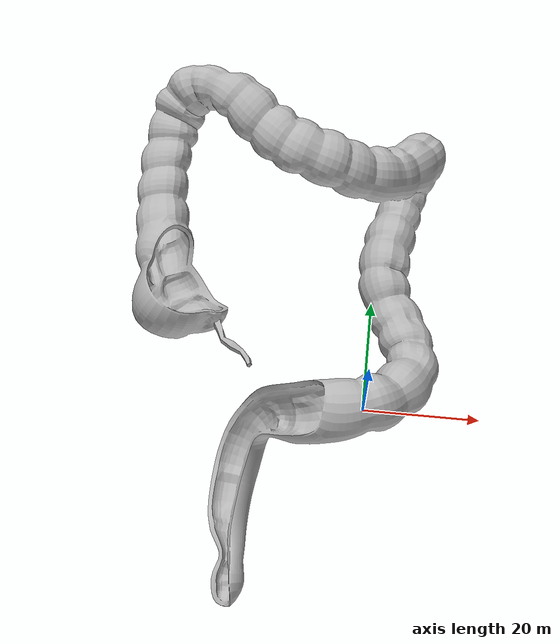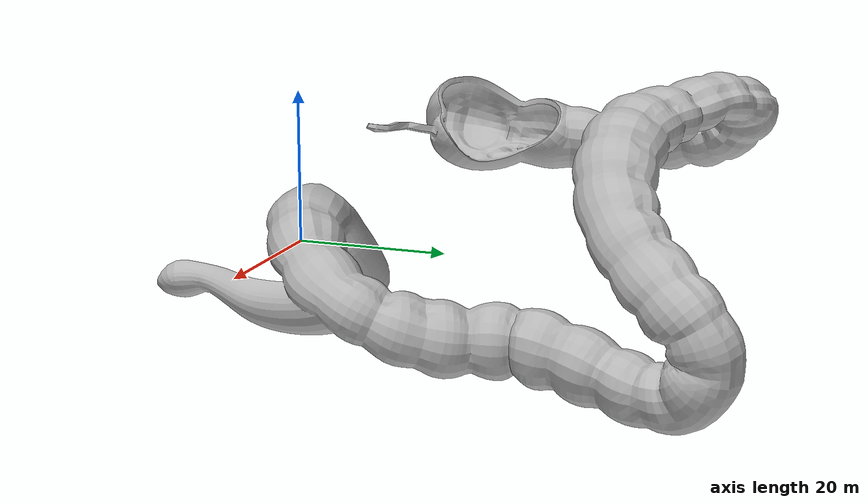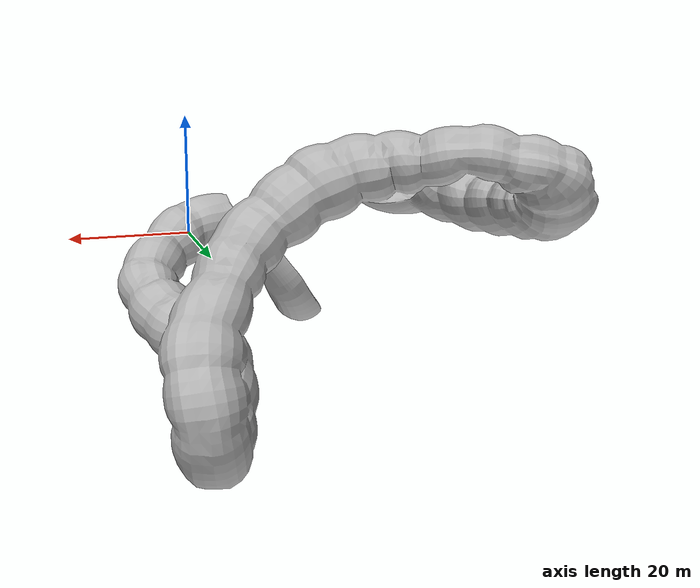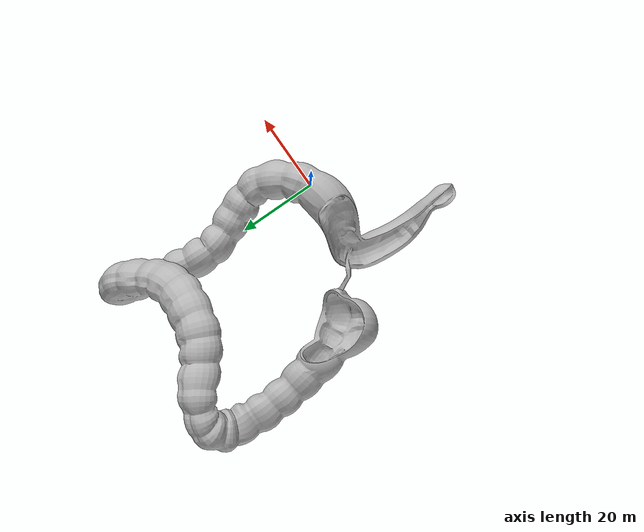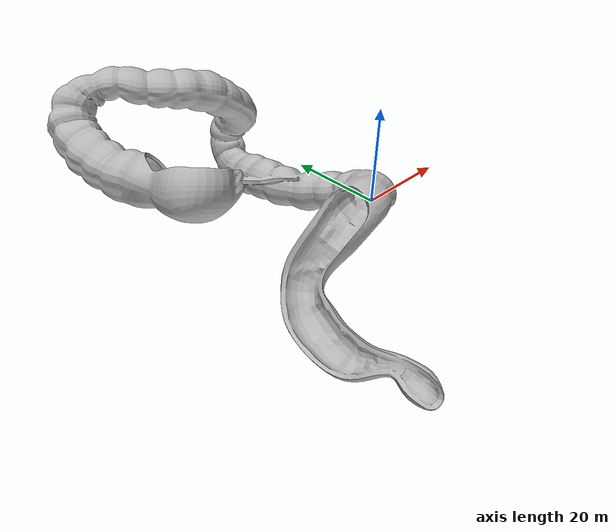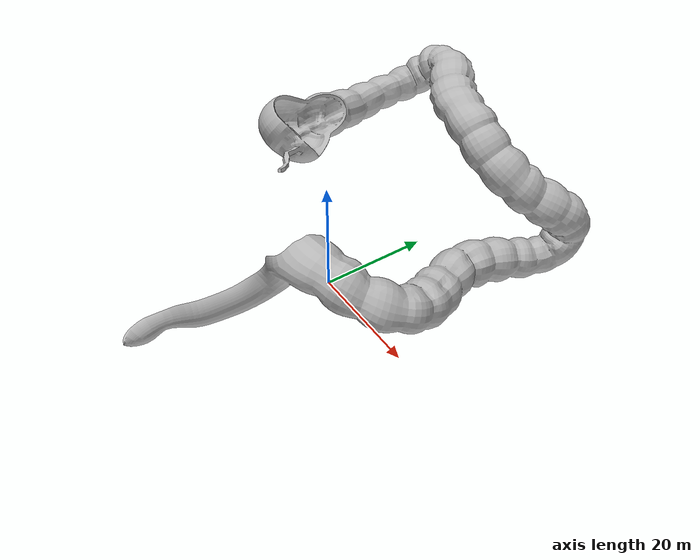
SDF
<?xml version="1.0"?>
<sdf version="1.4">
    <world name="default">
        <include>
            <uri>model://sun</uri>
        </include>

    <model name="my_mesh">
        <static>true</static>
        <pose>-15 -35 0  0 0 0</pose>
        <link name="body">
        <visual name="visual">
            <geometry>
            <mesh>
                <uri>file://human_large_intestine_anatomy.obj</uri>
            </mesh>
            </geometry>
        </visual>
        <collision name="collision">
            <geometry>
            <mesh>
                <uri>file://human_large_intestine_anatomy.obj</uri>
            </mesh>
            </geometry>
        </collision>
        </link>
    </model>

    <plugin name="my_mesh_spin" filename="libmy_mesh_spin.so"/>
    </world>
</sdf>
